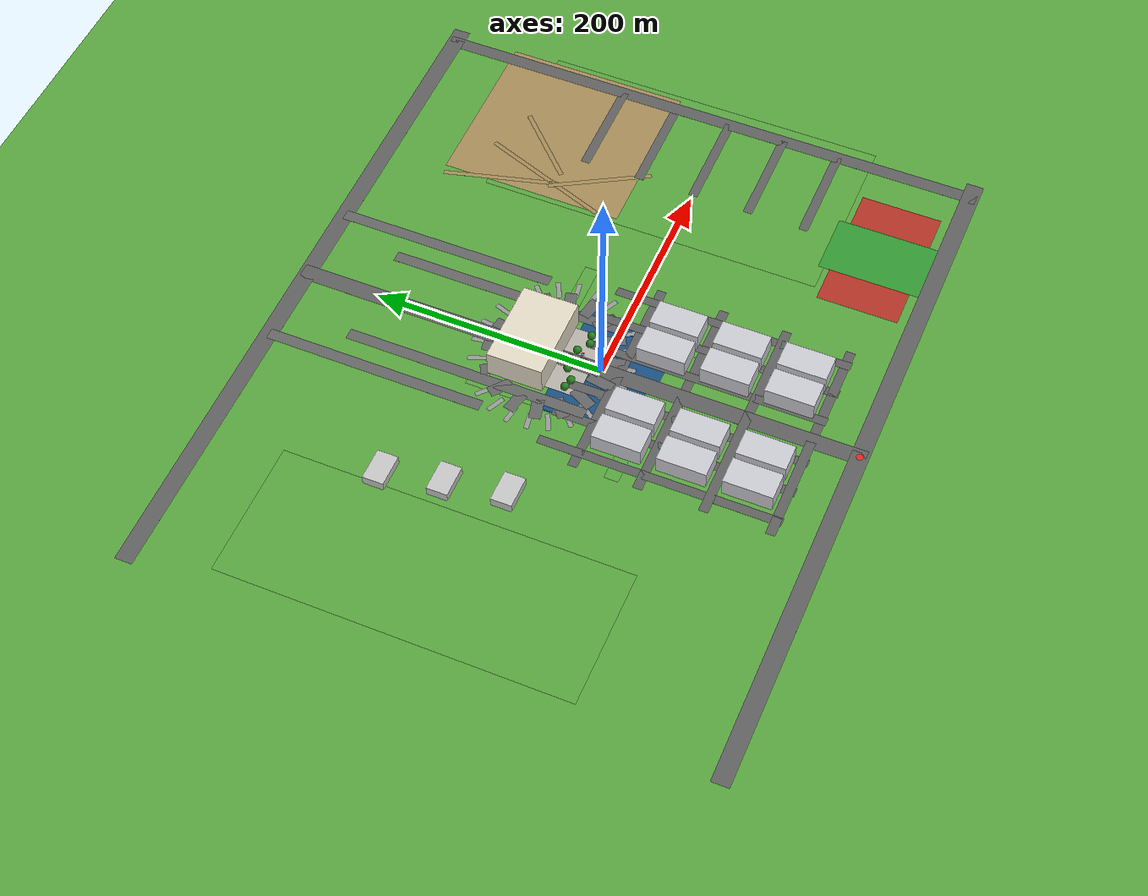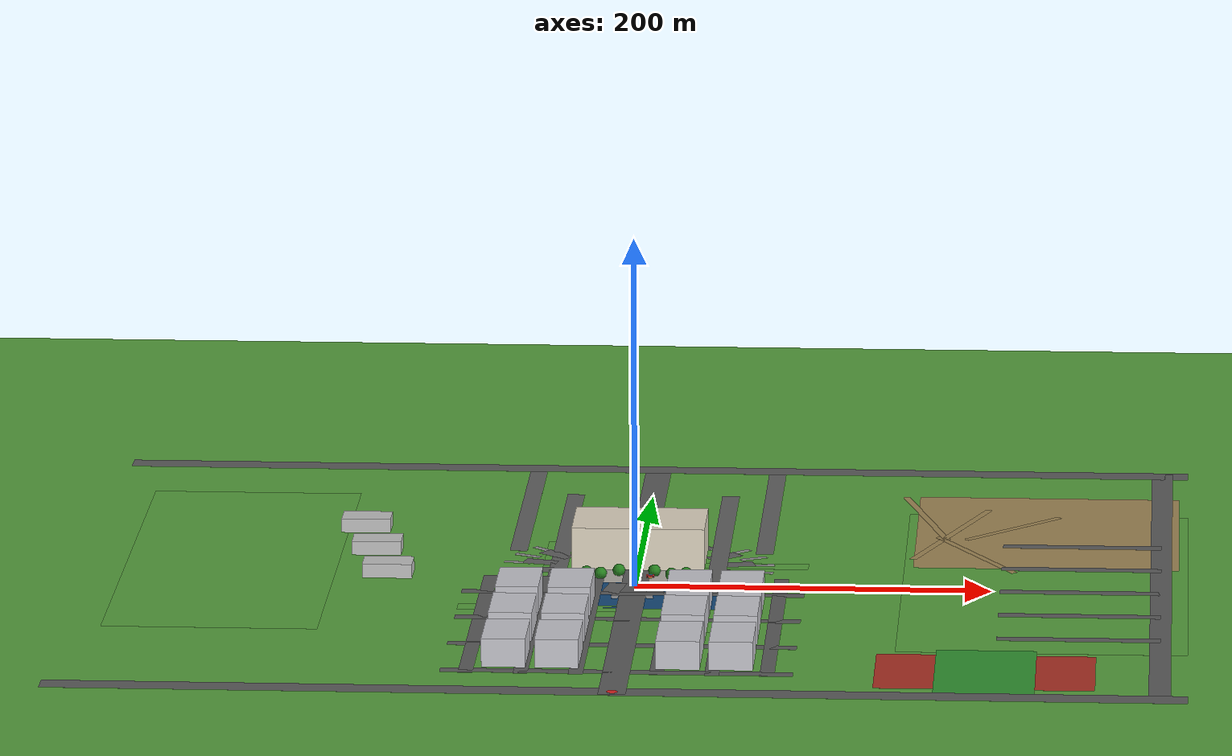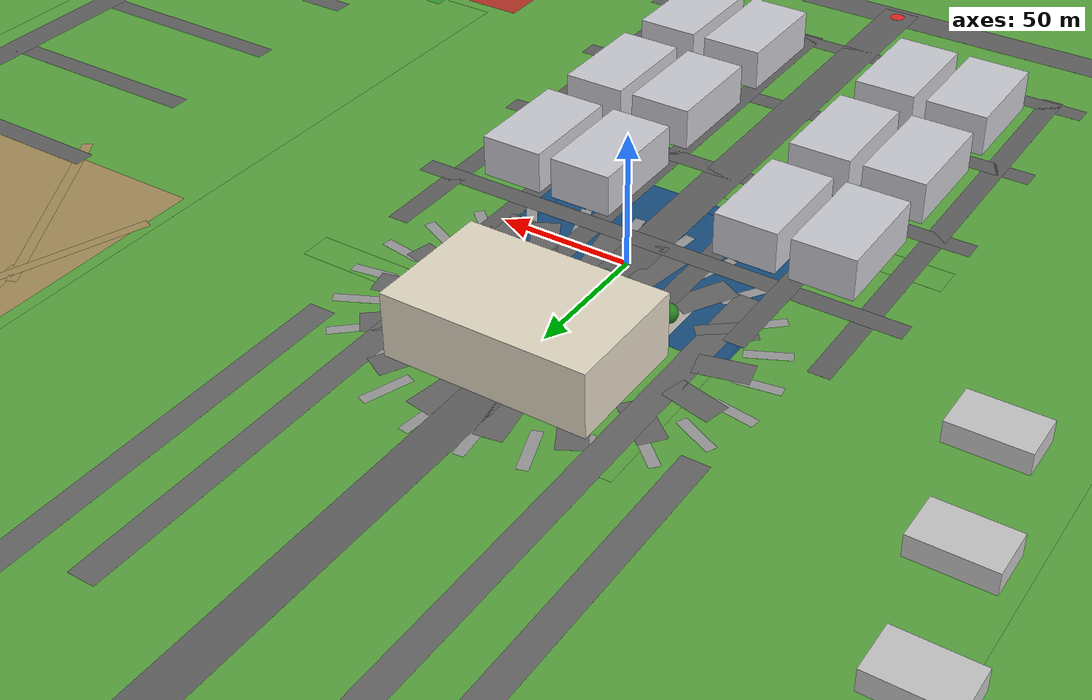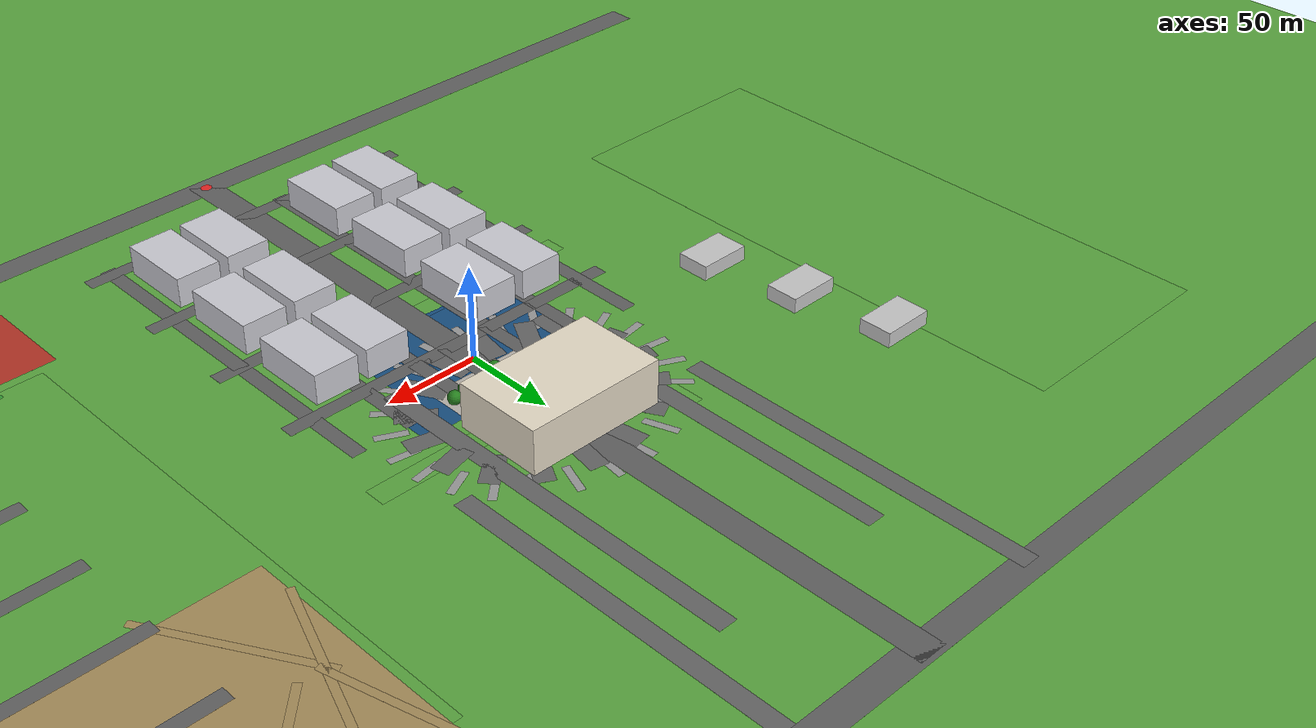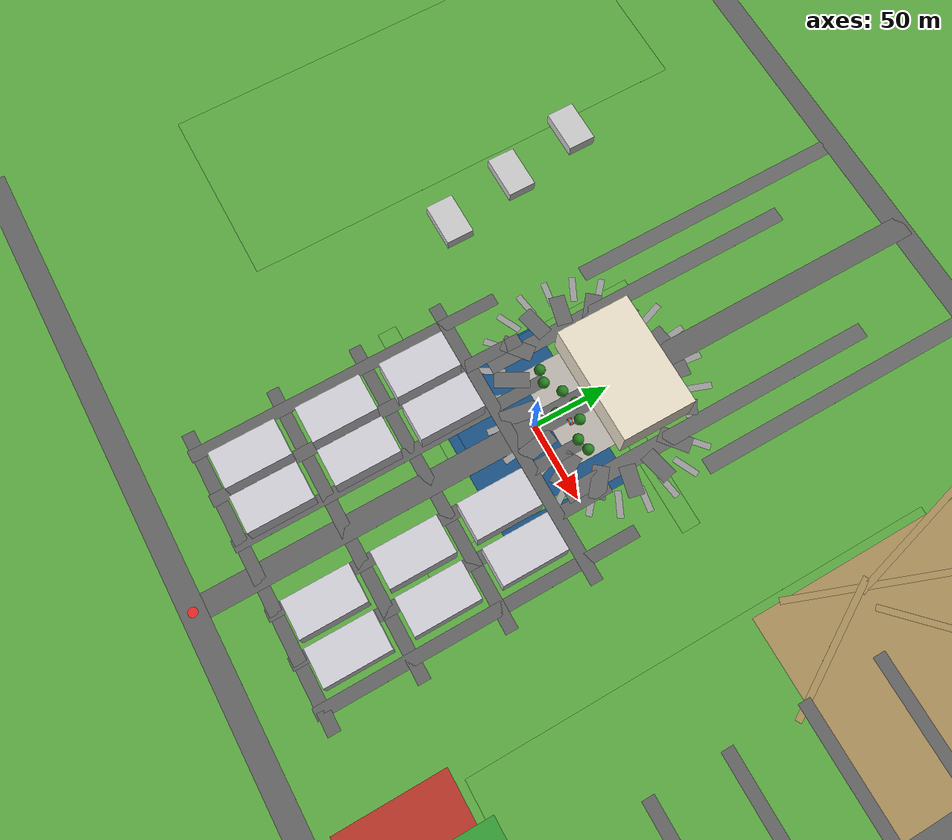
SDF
<sdf version="1.9">
 <world name="jiangyin">
  <physics type="ode">
   <max_step_size>0.004</max_step_size>
   <real_time_factor>1.0</real_time_factor>
   <real_time_update_rate>250</real_time_update_rate>
  </physics>
  <plugin name="gz::sim::systems::Physics" filename="gz-sim-physics-system"/>
  <plugin name="gz::sim::systems::UserCommands" filename="gz-sim-user-commands-system"/>
  <plugin name="gz::sim::systems::SceneBroadcaster" filename="gz-sim-scene-broadcaster-system"/>
  <plugin name="gz::sim::systems::Contact" filename="gz-sim-contact-system"/>
  <plugin name="gz::sim::systems::Imu" filename="gz-sim-imu-system"/>
  <plugin name="gz::sim::systems::AirPressure" filename="gz-sim-air-pressure-system"/>
  <plugin name="gz::sim::systems::ApplyLinkWrench" filename="gz-sim-apply-link-wrench-system"/>
  <plugin name="gz::sim::systems::NavSat" filename="gz-sim-navsat-system"/>
  <plugin name="gz::sim::systems::Sensors" filename="gz-sim-sensors-system">
   <render_engine>ogre2</render_engine>
  </plugin>
  <gravity>0 0 -9.8</gravity>
  <magnetic_field>6e-06 2.3e-05 -4.2e-05</magnetic_field>
  <atmosphere type="adiabatic"/>
  <scene>
   <grid>false</grid>
   <ambient>0.4 0.4 0.4 1</ambient>
   <background>0.6 0.75 0.9 1</background>
   <shadows>true</shadows>
  </scene>
  <light name="sunUTC" type="directional">
   <pose>0 0 500 0 -0 0</pose>
   <intensity>1</intensity>
   <direction>0.001 0.625 -0.78</direction>
   <diffuse>0.904 0.904 0.904 1</diffuse>
   <specular>0.271 0.271 0.271 1</specular>
   <attenuation><range>2000</range><linear>0</linear><constant>1</constant><quadratic>0</quadratic></attenuation>
   <spot><inner_angle>0</inner_angle><outer_angle>0</outer_angle><falloff>0</falloff></spot>
  </light>
  <spherical_coordinates>
   <surface_model>EARTH_WGS84</surface_model>
   <world_frame_orientation>ENU</world_frame_orientation>
   <latitude_deg>31.90325</latitude_deg>
   <longitude_deg>120.15825</longitude_deg>
   <elevation>3</elevation>
  </spherical_coordinates>
  <model name="ground_plane">
   <static>true</static>
   <link name="link">
    <collision name="collision">
     <geometry><plane><normal>0 0 1</normal><size>1 1</size></plane></geometry>
    </collision>
    <visual name="visual">
     <geometry><plane><normal>0 0 1</normal><size>660 510</size></plane></geometry>
     <material>
      <ambient>0.25 0.55 0.18 1</ambient>
      <diffuse>0.35 0.65 0.25 1</diffuse>
      <specular>0.1 0.1 0.1 1</specular>
     </material>
    </visual>
    <inertial>
     <mass>1</mass>
     <inertia><ixx>1</ixx><ixy>0</ixy><ixz>0</ixz><iyy>1</iyy><iyz>0</iyz><izz>1</izz></inertia>
    </inertial>
    <enable_wind>true</enable_wind>
   </link>
  </model>
  <model name="lake">
   <static>true</static>
   <link name="link">
    <visual name="visual">
     <geometry><box><size>110 80 0.005</size></box></geometry>
     <material>
      <ambient>0.0 0.15 0.4 0.85</ambient>
      <diffuse>0.1 0.3 0.6 0.85</diffuse>
      <specular>0.5 0.5 0.7 0.85</specular>
     </material>
    </visual>
   </link>
   <pose>0 -8 0.001 0 0 0</pose>
  </model>
  <model name="benchmark_marker">
   <static>true</static>
   <link name="link">
    <visual name="visual">
     <geometry><cylinder><radius>3</radius><length>0.05</length></cylinder></geometry>
     <material><ambient>0.8 0.1 0.1 1</ambient><diffuse>0.9 0.15 0.15 1</diffuse></material>
    </visual>
   </link>
   <pose>0 -220 0.008 0 0 0</pose>
  </model>
  <model name="road_axis">
   <static>true</static>
   <link name="link">
    <visual name="visual">
     <geometry><box><size>15 495 0.01</size></box></geometry>
     <material>
      <ambient>0.28 0.28 0.28 1</ambient>
      <diffuse>0.38 0.38 0.38 1</diffuse>
      <specular>0.1 0.1 0.1 1</specular>
     </material>
    </visual>
   </link>
   <pose>0 22.5 0.005 0 0 0</pose>
  </model>
  <model name="road_north_boundary">
   <static>true</static>
   <link name="link">
    <visual name="visual">
     <geometry><box><size>620 15 0.01</size></box></geometry>
     <material>
      <ambient>0.28 0.28 0.28 1</ambient>
      <diffuse>0.38 0.38 0.38 1</diffuse>
      <specular>0.1 0.1 0.1 1</specular>
     </material>
    </visual>
   </link>
   <pose>0 265 0.005 0 0 0</pose>
  </model>
  <model name="road_south_boundary">
   <static>true</static>
   <link name="link">
    <visual name="visual">
     <geometry><box><size>620 15 0.01</size></box></geometry>
     <material>
      <ambient>0.28 0.28 0.28 1</ambient>
      <diffuse>0.38 0.38 0.38 1</diffuse>
      <specular>0.1 0.1 0.1 1</specular>
     </material>
    </visual>
   </link>
   <pose>0 -220 0.005 0 0 0</pose>
  </model>
  <model name="road_east_longitudinal">
   <static>true</static>
   <link name="link">
    <visual name="visual">
     <geometry><box><size>12 495 0.01</size></box></geometry>
     <material>
      <ambient>0.28 0.28 0.28 1</ambient>
      <diffuse>0.38 0.38 0.38 1</diffuse>
      <specular>0.1 0.1 0.1 1</specular>
     </material>
    </visual>
   </link>
   <pose>295 22.5 0.005 0 0 0</pose>
  </model>
  <model name="road_ring_00">
   <static>true</static>
   <link name="link">
    <visual name="visual">
     <geometry><box><size>10 18.891932121753268 0.01</size></box></geometry>
     <material>
      <ambient>0.30 0.30 0.30 1</ambient>
      <diffuse>0.40 0.40 0.40 1</diffuse>
      <specular>0.1 0.1 0.1 1</specular>
     </material>
    </visual>
   </link>
   <pose>55.79250644282732 51.18440237676215 0.005 0 0 1.8066745296393754</pose>
  </model>
  <model name="road_ring_01">
   <static>true</static>
   <link name="link">
    <visual name="visual">
     <geometry><box><size>10 20.014319010346096 0.01</size></box></geometry>
     <material>
      <ambient>0.30 0.30 0.30 1</ambient>
      <diffuse>0.40 0.40 0.40 1</diffuse>
      <specular>0.1 0.1 0.1 1</specular>
     </material>
    </visual>
   </link>
   <pose>47.29860309723719 68.15496512523929 0.005 0 0 2.2500226231250684</pose>
  </model>
  <model name="road_ring_02">
   <static>true</static>
   <link name="link">
    <visual name="visual">
     <geometry><box><size>10 21.50182908508371 0.01</size></box></geometry>
     <material>
      <ambient>0.30 0.30 0.30 1</ambient>
      <diffuse>0.40 0.40 0.40 1</diffuse>
      <specular>0.1 0.1 0.1 1</specular>
     </material>
    </visual>
   </link>
   <pose>31.603916192997488 81.14367152874802 0.005 0 0 2.6364679181743162</pose>
  </model>
  <model name="road_ring_03">
   <static>true</static>
   <link name="link">
    <visual name="visual">
     <geometry><box><size>10 22.494366409372827 0.01</size></box></geometry>
     <material>
      <ambient>0.30 0.30 0.30 1</ambient>
      <diffuse>0.40 0.40 0.40 1</diffuse>
      <specular>0.1 0.1 0.1 1</specular>
     </material>
    </visual>
   </link>
   <pose>11.097819538587608 88.17310878027088 0.005 0 0 2.9784387787199136</pose>
  </model>
  <model name="road_ring_04">
   <static>true</static>
   <link name="link">
    <visual name="visual">
     <geometry><box><size>10 22.494366409372827 0.01</size></box></geometry>
     <material>
      <ambient>0.30 0.30 0.30 1</ambient>
      <diffuse>0.40 0.40 0.40 1</diffuse>
      <specular>0.1 0.1 0.1 1</specular>
     </material>
    </visual>
   </link>
   <pose>-11.0978195385876 88.17310878027088 0.005 0 0 -2.9784387787199136</pose>
  </model>
  <model name="road_ring_05">
   <static>true</static>
   <link name="link">
    <visual name="visual">
     <geometry><box><size>10 21.501829085083703 0.01</size></box></geometry>
     <material>
      <ambient>0.30 0.30 0.30 1</ambient>
      <diffuse>0.40 0.40 0.40 1</diffuse>
      <specular>0.1 0.1 0.1 1</specular>
     </material>
    </visual>
   </link>
   <pose>-31.60391619299748 81.14367152874803 0.005 0 0 -2.6364679181743167</pose>
  </model>
  <model name="road_ring_06">
   <static>true</static>
   <link name="link">
    <visual name="visual">
     <geometry><box><size>10 20.014319010346107 0.01</size></box></geometry>
     <material>
      <ambient>0.30 0.30 0.30 1</ambient>
      <diffuse>0.40 0.40 0.40 1</diffuse>
      <specular>0.1 0.1 0.1 1</specular>
     </material>
    </visual>
   </link>
   <pose>-47.29860309723719 68.1549651252393 0.005 0 0 -2.2500226231250684</pose>
  </model>
  <model name="road_ring_07">
   <static>true</static>
   <link name="link">
    <visual name="visual">
     <geometry><box><size>10 18.891932121753268 0.01</size></box></geometry>
     <material>
      <ambient>0.30 0.30 0.30 1</ambient>
      <diffuse>0.40 0.40 0.40 1</diffuse>
      <specular>0.1 0.1 0.1 1</specular>
     </material>
    </visual>
   </link>
   <pose>-55.79250644282732 51.184402376762165 0.005 0 0 -1.8066745296393754</pose>
  </model>
  <model name="road_ring_08">
   <static>true</static>
   <link name="link">
    <visual name="visual">
     <geometry><box><size>10 18.891932121753268 0.01</size></box></geometry>
     <material>
      <ambient>0.30 0.30 0.30 1</ambient>
      <diffuse>0.40 0.40 0.40 1</diffuse>
      <specular>0.1 0.1 0.1 1</specular>
     </material>
    </visual>
   </link>
   <pose>-55.79250644282732 32.81559762323785 0.005 0 0 -1.3349181239504182</pose>
  </model>
  <model name="road_ring_09">
   <static>true</static>
   <link name="link">
    <visual name="visual">
     <geometry><box><size>10 20.014319010346107 0.01</size></box></geometry>
     <material>
      <ambient>0.30 0.30 0.30 1</ambient>
      <diffuse>0.40 0.40 0.40 1</diffuse>
      <specular>0.1 0.1 0.1 1</specular>
     </material>
    </visual>
   </link>
   <pose>-47.298603097237205 15.845034874760708 0.005 0 0 -0.8915700304647254</pose>
  </model>
  <model name="road_ring_10">
   <static>true</static>
   <link name="link">
    <visual name="visual">
     <geometry><box><size>10 21.501829085083685 0.01</size></box></geometry>
     <material>
      <ambient>0.30 0.30 0.30 1</ambient>
      <diffuse>0.40 0.40 0.40 1</diffuse>
      <specular>0.1 0.1 0.1 1</specular>
     </material>
    </visual>
   </link>
   <pose>-31.603916192997502 2.8563284712519845 0.005 0 0 -0.505124735415477</pose>
  </model>
  <model name="road_ring_11">
   <static>true</static>
   <link name="link">
    <visual name="visual">
     <geometry><box><size>10 22.494366409372848 0.01</size></box></geometry>
     <material>
      <ambient>0.30 0.30 0.30 1</ambient>
      <diffuse>0.40 0.40 0.40 1</diffuse>
      <specular>0.1 0.1 0.1 1</specular>
     </material>
    </visual>
   </link>
   <pose>-11.097819538587625 -4.173108780270876 0.005 0 0 -0.1631538748698801</pose>
  </model>
  <model name="road_ring_12">
   <static>true</static>
   <link name="link">
    <visual name="visual">
     <geometry><box><size>10 22.494366409372848 0.01</size></box></geometry>
     <material>
      <ambient>0.30 0.30 0.30 1</ambient>
      <diffuse>0.40 0.40 0.40 1</diffuse>
      <specular>0.1 0.1 0.1 1</specular>
     </material>
    </visual>
   </link>
   <pose>11.097819538587604 -4.17310878027088 0.005 0 0 0.16315387486987976</pose>
  </model>
  <model name="road_ring_13">
   <static>true</static>
   <link name="link">
    <visual name="visual">
     <geometry><box><size>10 21.501829085083685 0.01</size></box></geometry>
     <material>
      <ambient>0.30 0.30 0.30 1</ambient>
      <diffuse>0.40 0.40 0.40 1</diffuse>
      <specular>0.1 0.1 0.1 1</specular>
     </material>
    </visual>
   </link>
   <pose>31.60391619299748 2.8563284712519774 0.005 0 0 0.505124735415477</pose>
  </model>
  <model name="road_ring_14">
   <static>true</static>
   <link name="link">
    <visual name="visual">
     <geometry><box><size>10 20.014319010346092 0.01</size></box></geometry>
     <material>
      <ambient>0.30 0.30 0.30 1</ambient>
      <diffuse>0.40 0.40 0.40 1</diffuse>
      <specular>0.1 0.1 0.1 1</specular>
     </material>
    </visual>
   </link>
   <pose>47.298603097237184 15.845034874760689 0.005 0 0 0.8915700304647243</pose>
  </model>
  <model name="road_ring_15">
   <static>true</static>
   <link name="link">
    <visual name="visual">
     <geometry><box><size>10 18.891932121753282 0.01</size></box></geometry>
     <material>
      <ambient>0.30 0.30 0.30 1</ambient>
      <diffuse>0.40 0.40 0.40 1</diffuse>
      <specular>0.1 0.1 0.1 1</specular>
     </material>
    </visual>
   </link>
   <pose>55.79250644282731 32.81559762323782 0.005 0 0 1.3349181239504175</pose>
  </model>
  <model name="road_ring_nw_branch">
   <static>true</static>
   <link name="link">
    <visual name="visual">
     <geometry><box><size>10 190 0.01</size></box></geometry>
     <material>
      <ambient>0.30 0.30 0.30 1</ambient>
      <diffuse>0.40 0.40 0.40 1</diffuse>
      <specular>0.1 0.1 0.1 1</specular>
     </material>
    </visual>
   </link>
   <pose>-70 170 0.005 0 0 0</pose>
  </model>
  <model name="road_ring_nw_branch2">
   <static>true</static>
   <link name="link">
    <visual name="visual">
     <geometry><box><size>10 210 0.01</size></box></geometry>
     <material>
      <ambient>0.30 0.30 0.30 1</ambient>
      <diffuse>0.40 0.40 0.40 1</diffuse>
      <specular>0.1 0.1 0.1 1</specular>
     </material>
    </visual>
   </link>
   <pose>-45 100 0.005 0 0 0</pose>
  </model>
  <model name="road_ring_ne_branch">
   <static>true</static>
   <link name="link">
    <visual name="visual">
     <geometry><box><size>10 190 0.01</size></box></geometry>
     <material>
      <ambient>0.30 0.30 0.30 1</ambient>
      <diffuse>0.40 0.40 0.40 1</diffuse>
      <specular>0.1 0.1 0.1 1</specular>
     </material>
    </visual>
   </link>
   <pose>70 170 0.005 0 0 0</pose>
  </model>
  <model name="road_ring_ne_branch2">
   <static>true</static>
   <link name="link">
    <visual name="visual">
     <geometry><box><size>10 210 0.01</size></box></geometry>
     <material>
      <ambient>0.30 0.30 0.30 1</ambient>
      <diffuse>0.40 0.40 0.40 1</diffuse>
      <specular>0.1 0.1 0.1 1</specular>
     </material>
    </visual>
   </link>
   <pose>45 100 0.005 0 0 0</pose>
  </model>
  <model name="road_grid_ew1">
   <static>true</static>
   <link name="link">
    <visual name="visual">
     <geometry><box><size>192 8 0.01</size></box></geometry>
     <material>
      <ambient>0.28 0.28 0.28 1</ambient>
      <diffuse>0.38 0.38 0.38 1</diffuse>
      <specular>0.1 0.1 0.1 1</specular>
     </material>
    </visual>
   </link>
   <pose>0 -15 0.005 0 0 0</pose>
  </model>
  <model name="road_grid_ew2">
   <static>true</static>
   <link name="link">
    <visual name="visual">
     <geometry><box><size>192 8 0.01</size></box></geometry>
     <material>
      <ambient>0.28 0.28 0.28 1</ambient>
      <diffuse>0.38 0.38 0.38 1</diffuse>
      <specular>0.1 0.1 0.1 1</specular>
     </material>
    </visual>
   </link>
   <pose>0 -70 0.005 0 0 0</pose>
  </model>
  <model name="road_grid_ew3">
   <static>true</static>
   <link name="link">
    <visual name="visual">
     <geometry><box><size>192 8 0.01</size></box></geometry>
     <material>
      <ambient>0.28 0.28 0.28 1</ambient>
      <diffuse>0.38 0.38 0.38 1</diffuse>
      <specular>0.1 0.1 0.1 1</specular>
     </material>
    </visual>
   </link>
   <pose>0 -125 0.005 0 0 0</pose>
  </model>
  <model name="road_grid_ew4">
   <static>true</static>
   <link name="link">
    <visual name="visual">
     <geometry><box><size>192 8 0.01</size></box></geometry>
     <material>
      <ambient>0.28 0.28 0.28 1</ambient>
      <diffuse>0.38 0.38 0.38 1</diffuse>
      <specular>0.1 0.1 0.1 1</specular>
     </material>
    </visual>
   </link>
   <pose>0 -180 0.005 0 0 0</pose>
  </model>
  <model name="road_grid_ns1">
   <static>true</static>
   <link name="link">
    <visual name="visual">
     <geometry><box><size>8 205 0.01</size></box></geometry>
     <material>
      <ambient>0.28 0.28 0.28 1</ambient>
      <diffuse>0.38 0.38 0.38 1</diffuse>
      <specular>0.1 0.1 0.1 1</specular>
     </material>
    </visual>
   </link>
   <pose>-82 -82.5 0.005 0 0 0</pose>
  </model>
  <model name="road_grid_ns2">
   <static>true</static>
   <link name="link">
    <visual name="visual">
     <geometry><box><size>8 205 0.01</size></box></geometry>
     <material>
      <ambient>0.28 0.28 0.28 1</ambient>
      <diffuse>0.38 0.38 0.38 1</diffuse>
      <specular>0.1 0.1 0.1 1</specular>
     </material>
    </visual>
   </link>
   <pose>-52 -82.5 0.005 0 0 0</pose>
  </model>
  <model name="road_grid_ns3">
   <static>true</static>
   <link name="link">
    <visual name="visual">
     <geometry><box><size>8 205 0.01</size></box></geometry>
     <material>
      <ambient>0.28 0.28 0.28 1</ambient>
      <diffuse>0.38 0.38 0.38 1</diffuse>
      <specular>0.1 0.1 0.1 1</specular>
     </material>
    </visual>
   </link>
   <pose>-22 -82.5 0.005 0 0 0</pose>
  </model>
  <model name="road_grid_ns4">
   <static>true</static>
   <link name="link">
    <visual name="visual">
     <geometry><box><size>8 205 0.01</size></box></geometry>
     <material>
      <ambient>0.28 0.28 0.28 1</ambient>
      <diffuse>0.38 0.38 0.38 1</diffuse>
      <specular>0.1 0.1 0.1 1</specular>
     </material>
    </visual>
   </link>
   <pose>22 -82.5 0.005 0 0 0</pose>
  </model>
  <model name="road_grid_ns5">
   <static>true</static>
   <link name="link">
    <visual name="visual">
     <geometry><box><size>8 205 0.01</size></box></geometry>
     <material>
      <ambient>0.28 0.28 0.28 1</ambient>
      <diffuse>0.38 0.38 0.38 1</diffuse>
      <specular>0.1 0.1 0.1 1</specular>
     </material>
    </visual>
   </link>
   <pose>52 -82.5 0.005 0 0 0</pose>
  </model>
  <model name="road_grid_ns6">
   <static>true</static>
   <link name="link">
    <visual name="visual">
     <geometry><box><size>8 205 0.01</size></box></geometry>
     <material>
      <ambient>0.28 0.28 0.28 1</ambient>
      <diffuse>0.38 0.38 0.38 1</diffuse>
      <specular>0.1 0.1 0.1 1</specular>
     </material>
    </visual>
   </link>
   <pose>82 -82.5 0.005 0 0 0</pose>
  </model>
  <model name="road_east_branch_005">
   <static>true</static>
   <link name="link">
    <visual name="visual">
     <geometry><box><size>90 8 0.01</size></box></geometry>
     <material>
      <ambient>0.28 0.28 0.28 1</ambient>
      <diffuse>0.38 0.38 0.38 1</diffuse>
      <specular>0.1 0.1 0.1 1</specular>
     </material>
    </visual>
   </link>
   <pose>250 -100 0.005 0 0 0</pose>
  </model>
  <model name="road_east_branch_055">
   <static>true</static>
   <link name="link">
    <visual name="visual">
     <geometry><box><size>90 8 0.01</size></box></geometry>
     <material>
      <ambient>0.28 0.28 0.28 1</ambient>
      <diffuse>0.38 0.38 0.38 1</diffuse>
      <specular>0.1 0.1 0.1 1</specular>
     </material>
    </visual>
   </link>
   <pose>250 -50 0.005 0 0 0</pose>
  </model>
  <model name="road_east_branch_105">
   <static>true</static>
   <link name="link">
    <visual name="visual">
     <geometry><box><size>90 8 0.01</size></box></geometry>
     <material>
      <ambient>0.28 0.28 0.28 1</ambient>
      <diffuse>0.38 0.38 0.38 1</diffuse>
      <specular>0.1 0.1 0.1 1</specular>
     </material>
    </visual>
   </link>
   <pose>250 0 0.005 0 0 0</pose>
  </model>
  <model name="road_east_branch_155">
   <static>true</static>
   <link name="link">
    <visual name="visual">
     <geometry><box><size>90 8 0.01</size></box></geometry>
     <material>
      <ambient>0.28 0.28 0.28 1</ambient>
      <diffuse>0.38 0.38 0.38 1</diffuse>
      <specular>0.1 0.1 0.1 1</specular>
     </material>
    </visual>
   </link>
   <pose>250 50 0.005 0 0 0</pose>
  </model>
  <model name="road_east_branch_205">
   <static>true</static>
   <link name="link">
    <visual name="visual">
     <geometry><box><size>90 8 0.01</size></box></geometry>
     <material>
      <ambient>0.28 0.28 0.28 1</ambient>
      <diffuse>0.38 0.38 0.38 1</diffuse>
      <specular>0.1 0.1 0.1 1</specular>
     </material>
    </visual>
   </link>
   <pose>250 100 0.005 0 0 0</pose>
  </model>
  <model name="path_lakeside_00">
   <static>true</static>
   <link name="link">
    <visual name="visual">
     <geometry><box><size>4 15.711251217742525 0.01</size></box></geometry>
     <material>
      <ambient>0.50 0.50 0.50 1</ambient>
      <diffuse>0.60 0.60 0.60 1</diffuse>
      <specular>0.1 0.1 0.1 1</specular>
     </material>
    </visual>
   </link>
   <pose>68.8074039201174 49.764571353075624 0.004 0 0 1.7231998892998297</pose>
  </model>
  <model name="path_lakeside_01">
   <static>true</static>
   <link name="link">
    <visual name="visual">
     <geometry><box><size>4 16.07196856207393 0.01</size></box></geometry>
     <material>
      <ambient>0.50 0.50 0.50 1</ambient>
      <diffuse>0.60 0.60 0.60 1</diffuse>
      <specular>0.1 0.1 0.1 1</specular>
     </material>
    </visual>
   </link>
   <pose>64.11829305257274 64.76457135307562 0.004 0 0 2.020953684364474</pose>
  </model>
  <model name="path_lakeside_02">
   <static>true</static>
   <link name="link">
    <visual name="visual">
     <geometry><box><size>4 16.678300810023863 0.01</size></box></geometry>
     <material>
      <ambient>0.50 0.50 0.50 1</ambient>
      <diffuse>0.60 0.60 0.60 1</diffuse>
      <specular>0.1 0.1 0.1 1</specular>
     </material>
    </visual>
   </link>
   <pose>55.05962647398452 78.21320343559643 0.004 0 0 2.300961383088927</pose>
  </model>
  <model name="path_lakeside_03">
   <static>true</static>
   <link name="link">
    <visual name="visual">
     <geometry><box><size>4 17.352095987983596 0.01</size></box></geometry>
     <material>
      <ambient>0.50 0.50 0.50 1</ambient>
      <diffuse>0.60 0.60 0.60 1</diffuse>
      <specular>0.1 0.1 0.1 1</specular>
     </material>
    </visual>
   </link>
   <pose>42.248737341529164 89.19396554912959 0.004 0 0 2.5598172831906942</pose>
  </model>
  <model name="path_lakeside_04">
   <static>true</static>
   <link name="link">
    <visual name="visual">
     <geometry><box><size>4 17.915155026556327 0.01</size></box></geometry>
     <material>
      <ambient>0.50 0.50 0.50 1</ambient>
      <diffuse>0.60 0.60 0.60 1</diffuse>
      <specular>0.1 0.1 0.1 1</specular>
     </material>
    </visual>
   </link>
   <pose>26.55866657858823 96.95853690220521 0.004 0 0 2.8004347570558954</pose>
  </model>
  <model name="path_lakeside_05">
   <static>true</static>
   <link name="link">
    <visual name="visual">
     <geometry><box><size>4 18.23232125262231 0.01</size></box></geometry>
     <material>
      <ambient>0.50 0.50 0.50 1</ambient>
      <diffuse>0.60 0.60 0.60 1</diffuse>
      <specular>0.1 0.1 0.1 1</specular>
     </material>
    </visual>
   </link>
   <pose>9.058666578588229 100.97777478867205 0.004 0 0 3.0292230181107205</pose>
  </model>
  <model name="path_lakeside_06">
   <static>true</static>
   <link name="link">
    <visual name="visual">
     <geometry><box><size>4 18.232321252622306 0.01</size></box></geometry>
     <material>
      <ambient>0.50 0.50 0.50 1</ambient>
      <diffuse>0.60 0.60 0.60 1</diffuse>
      <specular>0.1 0.1 0.1 1</specular>
     </material>
    </visual>
   </link>
   <pose>-9.05866657858822 100.97777478867205 0.004 0 0 -3.0292230181107205</pose>
  </model>
  <model name="path_lakeside_07">
   <static>true</static>
   <link name="link">
    <visual name="visual">
     <geometry><box><size>4 17.91515502655632 0.01</size></box></geometry>
     <material>
      <ambient>0.50 0.50 0.50 1</ambient>
      <diffuse>0.60 0.60 0.60 1</diffuse>
      <specular>0.1 0.1 0.1 1</specular>
     </material>
    </visual>
   </link>
   <pose>-26.558666578588216 96.95853690220521 0.004 0 0 -2.800434757055895</pose>
  </model>
  <model name="path_lakeside_08">
   <static>true</static>
   <link name="link">
    <visual name="visual">
     <geometry><box><size>4 17.352095987983606 0.01</size></box></geometry>
     <material>
      <ambient>0.50 0.50 0.50 1</ambient>
      <diffuse>0.60 0.60 0.60 1</diffuse>
      <specular>0.1 0.1 0.1 1</specular>
     </material>
    </visual>
   </link>
   <pose>-42.24873734152915 89.19396554912959 0.004 0 0 -2.5598172831906947</pose>
  </model>
  <model name="path_lakeside_09">
   <static>true</static>
   <link name="link">
    <visual name="visual">
     <geometry><box><size>4 16.678300810023867 0.01</size></box></geometry>
     <material>
      <ambient>0.50 0.50 0.50 1</ambient>
      <diffuse>0.60 0.60 0.60 1</diffuse>
      <specular>0.1 0.1 0.1 1</specular>
     </material>
    </visual>
   </link>
   <pose>-55.059626473984515 78.21320343559643 0.004 0 0 -2.3009613830889273</pose>
  </model>
  <model name="path_lakeside_10">
   <static>true</static>
   <link name="link">
    <visual name="visual">
     <geometry><box><size>4 16.071968562073916 0.01</size></box></geometry>
     <material>
      <ambient>0.50 0.50 0.50 1</ambient>
      <diffuse>0.60 0.60 0.60 1</diffuse>
      <specular>0.1 0.1 0.1 1</specular>
     </material>
    </visual>
   </link>
   <pose>-64.11829305257274 64.76457135307564 0.004 0 0 -2.020953684364474</pose>
  </model>
  <model name="path_lakeside_11">
   <static>true</static>
   <link name="link">
    <visual name="visual">
     <geometry><box><size>4 15.711251217742532 0.01</size></box></geometry>
     <material>
      <ambient>0.50 0.50 0.50 1</ambient>
      <diffuse>0.60 0.60 0.60 1</diffuse>
      <specular>0.1 0.1 0.1 1</specular>
     </material>
    </visual>
   </link>
   <pose>-68.8074039201174 49.76457135307564 0.004 0 0 -1.7231998892998297</pose>
  </model>
  <model name="path_lakeside_12">
   <static>true</static>
   <link name="link">
    <visual name="visual">
     <geometry><box><size>4 15.711251217742532 0.01</size></box></geometry>
     <material>
      <ambient>0.50 0.50 0.50 1</ambient>
      <diffuse>0.60 0.60 0.60 1</diffuse>
      <specular>0.1 0.1 0.1 1</specular>
     </material>
    </visual>
   </link>
   <pose>-68.8074039201174 34.235428646924376 0.004 0 0 -1.4183927642899636</pose>
  </model>
  <model name="path_lakeside_13">
   <static>true</static>
   <link name="link">
    <visual name="visual">
     <geometry><box><size>4 16.07196856207391 0.01</size></box></geometry>
     <material>
      <ambient>0.50 0.50 0.50 1</ambient>
      <diffuse>0.60 0.60 0.60 1</diffuse>
      <specular>0.1 0.1 0.1 1</specular>
     </material>
    </visual>
   </link>
   <pose>-64.11829305257274 19.235428646924383 0.004 0 0 -1.1206389692253194</pose>
  </model>
  <model name="path_lakeside_14">
   <static>true</static>
   <link name="link">
    <visual name="visual">
     <geometry><box><size>4 16.678300810023842 0.01</size></box></geometry>
     <material>
      <ambient>0.50 0.50 0.50 1</ambient>
      <diffuse>0.60 0.60 0.60 1</diffuse>
      <specular>0.1 0.1 0.1 1</specular>
     </material>
    </visual>
   </link>
   <pose>-55.05962647398454 5.786796564403597 0.004 0 0 -0.8406312705008667</pose>
  </model>
  <model name="path_lakeside_15">
   <static>true</static>
   <link name="link">
    <visual name="visual">
     <geometry><box><size>4 17.35209598798361 0.01</size></box></geometry>
     <material>
      <ambient>0.50 0.50 0.50 1</ambient>
      <diffuse>0.60 0.60 0.60 1</diffuse>
      <specular>0.1 0.1 0.1 1</specular>
     </material>
    </visual>
   </link>
   <pose>-42.24873734152919 -5.193965549129565 0.004 0 0 -0.5817753703990993</pose>
  </model>
  <model name="path_lakeside_16">
   <static>true</static>
   <link name="link">
    <visual name="visual">
     <geometry><box><size>4 17.915155026556363 0.01</size></box></geometry>
     <material>
      <ambient>0.50 0.50 0.50 1</ambient>
      <diffuse>0.60 0.60 0.60 1</diffuse>
      <specular>0.1 0.1 0.1 1</specular>
     </material>
    </visual>
   </link>
   <pose>-26.558666578588237 -12.958536902205203 0.004 0 0 -0.3411578965338981</pose>
  </model>
  <model name="path_lakeside_17">
   <static>true</static>
   <link name="link">
    <visual name="visual">
     <geometry><box><size>4 18.232321252622288 0.01</size></box></geometry>
     <material>
      <ambient>0.50 0.50 0.50 1</ambient>
      <diffuse>0.60 0.60 0.60 1</diffuse>
      <specular>0.1 0.1 0.1 1</specular>
     </material>
    </visual>
   </link>
   <pose>-9.058666578588229 -16.97777478867205 0.004 0 0 -0.11236963547907308</pose>
  </model>
  <model name="path_lakeside_18">
   <static>true</static>
   <link name="link">
    <visual name="visual">
     <geometry><box><size>4 18.23232125262229 0.01</size></box></geometry>
     <material>
      <ambient>0.50 0.50 0.50 1</ambient>
      <diffuse>0.60 0.60 0.60 1</diffuse>
      <specular>0.1 0.1 0.1 1</specular>
     </material>
    </visual>
   </link>
   <pose>9.058666578588204 -16.977774788672054 0.004 0 0 0.11236963547907265</pose>
  </model>
  <model name="path_lakeside_19">
   <static>true</static>
   <link name="link">
    <visual name="visual">
     <geometry><box><size>4 17.915155026556363 0.01</size></box></geometry>
     <material>
      <ambient>0.50 0.50 0.50 1</ambient>
      <diffuse>0.60 0.60 0.60 1</diffuse>
      <specular>0.1 0.1 0.1 1</specular>
     </material>
    </visual>
   </link>
   <pose>26.558666578588216 -12.95853690220521 0.004 0 0 0.3411578965338981</pose>
  </model>
  <model name="path_lakeside_20">
   <static>true</static>
   <link name="link">
    <visual name="visual">
     <geometry><box><size>4 17.352095987983574 0.01</size></box></geometry>
     <material>
      <ambient>0.50 0.50 0.50 1</ambient>
      <diffuse>0.60 0.60 0.60 1</diffuse>
      <specular>0.1 0.1 0.1 1</specular>
     </material>
    </visual>
   </link>
   <pose>42.248737341529164 -5.193965549129587 0.004 0 0 0.5817753703990985</pose>
  </model>
  <model name="path_lakeside_21">
   <static>true</static>
   <link name="link">
    <visual name="visual">
     <geometry><box><size>4 16.678300810023842 0.01</size></box></geometry>
     <material>
      <ambient>0.50 0.50 0.50 1</ambient>
      <diffuse>0.60 0.60 0.60 1</diffuse>
      <specular>0.1 0.1 0.1 1</specular>
     </material>
    </visual>
   </link>
   <pose>55.0596264739845 5.786796564403556 0.004 0 0 0.8406312705008656</pose>
  </model>
  <model name="path_lakeside_22">
   <static>true</static>
   <link name="link">
    <visual name="visual">
     <geometry><box><size>4 16.071968562073916 0.01</size></box></geometry>
     <material>
      <ambient>0.50 0.50 0.50 1</ambient>
      <diffuse>0.60 0.60 0.60 1</diffuse>
      <specular>0.1 0.1 0.1 1</specular>
     </material>
    </visual>
   </link>
   <pose>64.11829305257272 19.23542864692434 0.004 0 0 1.1206389692253185</pose>
  </model>
  <model name="path_lakeside_23">
   <static>true</static>
   <link name="link">
    <visual name="visual">
     <geometry><box><size>4 15.711251217742559 0.01</size></box></geometry>
     <material>
      <ambient>0.50 0.50 0.50 1</ambient>
      <diffuse>0.60 0.60 0.60 1</diffuse>
      <specular>0.1 0.1 0.1 1</specular>
     </material>
    </visual>
   </link>
   <pose>68.80740392011738 34.23542864692435 0.004 0 0 1.418392764289963</pose>
  </model>
  <model name="dirt_path_01">
   <static>true</static>
   <link name="link">
    <visual name="visual">
     <geometry><box><size>4 100 0.01</size></box></geometry>
     <material>
      <ambient>0.55 0.45 0.30 1</ambient>
      <diffuse>0.65 0.55 0.35 1</diffuse>
      <specular>0.1 0.1 0.1 1</specular>
     </material>
    </visual>
   </link>
   <pose>160 160 0.003 0 0 0.2617993877991494</pose>
  </model>
  <model name="dirt_path_02">
   <static>true</static>
   <link name="link">
    <visual name="visual">
     <geometry><box><size>4 120 0.01</size></box></geometry>
     <material>
      <ambient>0.55 0.45 0.30 1</ambient>
      <diffuse>0.65 0.55 0.35 1</diffuse>
      <specular>0.1 0.1 0.1 1</specular>
     </material>
    </visual>
   </link>
   <pose>175 125 0.003 0 0 -0.3490658503988659</pose>
  </model>
  <model name="dirt_path_03">
   <static>true</static>
   <link name="link">
    <visual name="visual">
     <geometry><box><size>4 90 0.01</size></box></geometry>
     <material>
      <ambient>0.55 0.45 0.30 1</ambient>
      <diffuse>0.65 0.55 0.35 1</diffuse>
      <specular>0.1 0.1 0.1 1</specular>
     </material>
    </visual>
   </link>
   <pose>190 80 0.003 0 0 0.5235987755982988</pose>
  </model>
  <model name="dirt_path_04">
   <static>true</static>
   <link name="link">
    <visual name="visual">
     <geometry><box><size>4 75 0.01</size></box></geometry>
     <material>
      <ambient>0.55 0.45 0.30 1</ambient>
      <diffuse>0.65 0.55 0.35 1</diffuse>
      <specular>0.1 0.1 0.1 1</specular>
     </material>
    </visual>
   </link>
   <pose>210 140 0.003 0 0 -0.7853981633974483</pose>
  </model>
  <model name="peninsula">
   <static>true</static>
   <link name="link">
    <visual name="visual">
     <geometry><box><size>55 18 0.003</size></box></geometry>
     <material>
      <ambient>0.25 0.55 0.18 1</ambient>
      <diffuse>0.35 0.65 0.25 1</diffuse>
      <specular>0.1 0.1 0.1 1</specular>
     </material>
    </visual>
   </link>
   <pose>0 30 0.003 0 0 0</pose>
  </model>
  <model name="central_plaza">
   <static>true</static>
   <link name="link">
    <visual name="visual">
     <geometry><box><size>65 28 0.005</size></box></geometry>
     <material>
      <ambient>0.65 0.63 0.60 1</ambient>
      <diffuse>0.72 0.70 0.67 1</diffuse>
      <specular>0.1 0.1 0.1 1</specular>
     </material>
    </visual>
   </link>
   <pose>0 22 0.003 0 0 0</pose>
  </model>
  <model name="library">
   <static>true</static>
   <link name="link">
    <collision name="collision"><geometry><box><size>75 48 24</size></box></geometry></collision>
    <visual name="visual">
     <geometry><box><size>75 48 24</size></box></geometry>
     <material>
      <ambient>0.85 0.80 0.72 1</ambient>
      <diffuse>0.90 0.86 0.78 1</diffuse>
      <specular>0.1 0.1 0.1 1</specular>
     </material>
    </visual>
   </link>
   <pose>0 60 12.0 0 0 0</pose>
  </model>
  <model name="teaching_r1_w1">
   <static>true</static>
   <link name="link">
    <collision name="collision"><geometry><box><size>24 42 16</size></box></geometry></collision>
    <visual name="visual">
     <geometry><box><size>24 42 16</size></box></geometry>
     <material>
      <ambient>0.75 0.75 0.78 1</ambient>
      <diffuse>0.80 0.80 0.83 1</diffuse>
      <specular>0.1 0.1 0.1 1</specular>
     </material>
    </visual>
   </link>
   <pose>-62 -42.5 8.0 0 0 0</pose>
  </model>
  <model name="teaching_r1_w2">
   <static>true</static>
   <link name="link">
    <collision name="collision"><geometry><box><size>24 42 16</size></box></geometry></collision>
    <visual name="visual">
     <geometry><box><size>24 42 16</size></box></geometry>
     <material>
      <ambient>0.75 0.75 0.78 1</ambient>
      <diffuse>0.80 0.80 0.83 1</diffuse>
      <specular>0.1 0.1 0.1 1</specular>
     </material>
    </visual>
   </link>
   <pose>-33 -42.5 8.0 0 0 0</pose>
  </model>
  <model name="teaching_r1_e3">
   <static>true</static>
   <link name="link">
    <collision name="collision"><geometry><box><size>24 42 16</size></box></geometry></collision>
    <visual name="visual">
     <geometry><box><size>24 42 16</size></box></geometry>
     <material>
      <ambient>0.75 0.75 0.78 1</ambient>
      <diffuse>0.80 0.80 0.83 1</diffuse>
      <specular>0.1 0.1 0.1 1</specular>
     </material>
    </visual>
   </link>
   <pose>33 -42.5 8.0 0 0 0</pose>
  </model>
  <model name="teaching_r1_e4">
   <static>true</static>
   <link name="link">
    <collision name="collision"><geometry><box><size>24 42 16</size></box></geometry></collision>
    <visual name="visual">
     <geometry><box><size>24 42 16</size></box></geometry>
     <material>
      <ambient>0.75 0.75 0.78 1</ambient>
      <diffuse>0.80 0.80 0.83 1</diffuse>
      <specular>0.1 0.1 0.1 1</specular>
     </material>
    </visual>
   </link>
   <pose>62 -42.5 8.0 0 0 0</pose>
  </model>
  <model name="teaching_r2_w1">
   <static>true</static>
   <link name="link">
    <collision name="collision"><geometry><box><size>24 42 16</size></box></geometry></collision>
    <visual name="visual">
     <geometry><box><size>24 42 16</size></box></geometry>
     <material>
      <ambient>0.75 0.75 0.78 1</ambient>
      <diffuse>0.80 0.80 0.83 1</diffuse>
      <specular>0.1 0.1 0.1 1</specular>
     </material>
    </visual>
   </link>
   <pose>-62 -97.5 8.0 0 0 0</pose>
  </model>
  <model name="teaching_r2_w2">
   <static>true</static>
   <link name="link">
    <collision name="collision"><geometry><box><size>24 42 16</size></box></geometry></collision>
    <visual name="visual">
     <geometry><box><size>24 42 16</size></box></geometry>
     <material>
      <ambient>0.75 0.75 0.78 1</ambient>
      <diffuse>0.80 0.80 0.83 1</diffuse>
      <specular>0.1 0.1 0.1 1</specular>
     </material>
    </visual>
   </link>
   <pose>-33 -97.5 8.0 0 0 0</pose>
  </model>
  <model name="teaching_r2_e3">
   <static>true</static>
   <link name="link">
    <collision name="collision"><geometry><box><size>24 42 16</size></box></geometry></collision>
    <visual name="visual">
     <geometry><box><size>24 42 16</size></box></geometry>
     <material>
      <ambient>0.75 0.75 0.78 1</ambient>
      <diffuse>0.80 0.80 0.83 1</diffuse>
      <specular>0.1 0.1 0.1 1</specular>
     </material>
    </visual>
   </link>
   <pose>33 -97.5 8.0 0 0 0</pose>
  </model>
  <model name="teaching_r2_e4">
   <static>true</static>
   <link name="link">
    <collision name="collision"><geometry><box><size>24 42 16</size></box></geometry></collision>
    <visual name="visual">
     <geometry><box><size>24 42 16</size></box></geometry>
     <material>
      <ambient>0.75 0.75 0.78 1</ambient>
      <diffuse>0.80 0.80 0.83 1</diffuse>
      <specular>0.1 0.1 0.1 1</specular>
     </material>
    </visual>
   </link>
   <pose>62 -97.5 8.0 0 0 0</pose>
  </model>
  <model name="teaching_r3_w1">
   <static>true</static>
   <link name="link">
    <collision name="collision"><geometry><box><size>24 42 16</size></box></geometry></collision>
    <visual name="visual">
     <geometry><box><size>24 42 16</size></box></geometry>
     <material>
      <ambient>0.75 0.75 0.78 1</ambient>
      <diffuse>0.80 0.80 0.83 1</diffuse>
      <specular>0.1 0.1 0.1 1</specular>
     </material>
    </visual>
   </link>
   <pose>-62 -152.5 8.0 0 0 0</pose>
  </model>
  <model name="teaching_r3_w2">
   <static>true</static>
   <link name="link">
    <collision name="collision"><geometry><box><size>24 42 16</size></box></geometry></collision>
    <visual name="visual">
     <geometry><box><size>24 42 16</size></box></geometry>
     <material>
      <ambient>0.75 0.75 0.78 1</ambient>
      <diffuse>0.80 0.80 0.83 1</diffuse>
      <specular>0.1 0.1 0.1 1</specular>
     </material>
    </visual>
   </link>
   <pose>-33 -152.5 8.0 0 0 0</pose>
  </model>
  <model name="teaching_r3_e3">
   <static>true</static>
   <link name="link">
    <collision name="collision"><geometry><box><size>24 42 16</size></box></geometry></collision>
    <visual name="visual">
     <geometry><box><size>24 42 16</size></box></geometry>
     <material>
      <ambient>0.75 0.75 0.78 1</ambient>
      <diffuse>0.80 0.80 0.83 1</diffuse>
      <specular>0.1 0.1 0.1 1</specular>
     </material>
    </visual>
   </link>
   <pose>33 -152.5 8.0 0 0 0</pose>
  </model>
  <model name="teaching_r3_e4">
   <static>true</static>
   <link name="link">
    <collision name="collision"><geometry><box><size>24 42 16</size></box></geometry></collision>
    <visual name="visual">
     <geometry><box><size>24 42 16</size></box></geometry>
     <material>
      <ambient>0.75 0.75 0.78 1</ambient>
      <diffuse>0.80 0.80 0.83 1</diffuse>
      <specular>0.1 0.1 0.1 1</specular>
     </material>
    </visual>
   </link>
   <pose>62 -152.5 8.0 0 0 0</pose>
  </model>
  <model name="aux_building_1">
   <static>true</static>
   <link name="link">
    <collision name="collision"><geometry><box><size>28 18 8</size></box></geometry></collision>
    <visual name="visual">
     <geometry><box><size>28 18 8</size></box></geometry>
     <material>
      <ambient>0.72 0.72 0.72 1</ambient>
      <diffuse>0.78 0.78 0.78 1</diffuse>
      <specular>0.1 0.1 0.1 1</specular>
     </material>
    </visual>
   </link>
   <pose>-160 120 4.0 0 0 0</pose>
  </model>
  <model name="aux_building_2">
   <static>true</static>
   <link name="link">
    <collision name="collision"><geometry><box><size>28 18 8</size></box></geometry></collision>
    <visual name="visual">
     <geometry><box><size>28 18 8</size></box></geometry>
     <material>
      <ambient>0.72 0.72 0.72 1</ambient>
      <diffuse>0.78 0.78 0.78 1</diffuse>
      <specular>0.1 0.1 0.1 1</specular>
     </material>
    </visual>
   </link>
   <pose>-150 70 4.0 0 0 0</pose>
  </model>
  <model name="aux_building_3">
   <static>true</static>
   <link name="link">
    <collision name="collision"><geometry><box><size>28 18 8</size></box></geometry></collision>
    <visual name="visual">
     <geometry><box><size>28 18 8</size></box></geometry>
     <material>
      <ambient>0.72 0.72 0.72 1</ambient>
      <diffuse>0.78 0.78 0.78 1</diffuse>
      <specular>0.1 0.1 0.1 1</specular>
     </material>
    </visual>
   </link>
   <pose>-140 20 4.0 0 0 0</pose>
  </model>
  <model name="sports_field_base">
   <static>true</static>
   <link name="link">
    <visual name="visual">
     <geometry><box><size>120 70 0.005</size></box></geometry>
     <material>
      <ambient>0.6 0.15 0.1 1</ambient>
      <diffuse>0.7 0.2 0.15 1</diffuse>
      <specular>0.1 0.1 0.1 1</specular>
     </material>
    </visual>
   </link>
   <pose>200 -170 0.003 0 0 0</pose>
  </model>
  <model name="sports_field_center">
   <static>true</static>
   <link name="link">
    <visual name="visual">
     <geometry><box><size>55 90 0.006</size></box></geometry>
     <material>
      <ambient>0.15 0.50 0.15 1</ambient>
      <diffuse>0.20 0.60 0.20 1</diffuse>
      <specular>0.1 0.1 0.1 1</specular>
     </material>
    </visual>
   </link>
   <pose>200 -170 0.004 0 0 0</pose>
  </model>
  <model name="bare_soil">
   <static>true</static>
   <link name="link">
    <visual name="visual">
     <geometry><box><size>150 160 0.005</size></box></geometry>
     <material>
      <ambient>0.55 0.45 0.30 1</ambient>
      <diffuse>0.65 0.55 0.35 1</diffuse>
      <specular>0.1 0.1 0.1 1</specular>
     </material>
    </visual>
   </link>
   <pose>230 130 0.002 0 0 0</pose>
  </model>
  <model name="green_east_grassland">
   <static>true</static>
   <link name="link">
    <visual name="visual">
     <geometry><box><size>160 300 0.003</size></box></geometry>
     <material>
      <ambient>0.25 0.55 0.18 1</ambient>
      <diffuse>0.35 0.65 0.25 1</diffuse>
      <specular>0.1 0.1 0.1 1</specular>
     </material>
    </visual>
   </link>
   <pose>230 20 0.002 0 0 0</pose>
  </model>
  <model name="green_west_strip">
   <static>true</static>
   <link name="link">
    <visual name="visual">
     <geometry><box><size>120 300 0.003</size></box></geometry>
     <material>
      <ambient>0.25 0.55 0.18 1</ambient>
      <diffuse>0.35 0.65 0.25 1</diffuse>
      <specular>0.1 0.1 0.1 1</specular>
     </material>
    </visual>
   </link>
   <pose>-230 50 0.002 0 0 0</pose>
  </model>
  <model name="green_ring_0">
   <static>true</static>
   <link name="link">
    <visual name="visual">
     <geometry><box><size>96 12 0.003</size></box></geometry>
     <material>
      <ambient>0.25 0.55 0.18 1</ambient>
      <diffuse>0.35 0.65 0.25 1</diffuse>
      <specular>0.1 0.1 0.1 1</specular>
     </material>
    </visual>
   </link>
   <pose>-48 -48 0.002 0 0 0</pose>
  </model>
  <model name="green_ring_1">
   <static>true</static>
   <link name="link">
    <visual name="visual">
     <geometry><box><size>12 96 0.003</size></box></geometry>
     <material>
      <ambient>0.25 0.55 0.18 1</ambient>
      <diffuse>0.35 0.65 0.25 1</diffuse>
      <specular>0.1 0.1 0.1 1</specular>
     </material>
    </visual>
   </link>
   <pose>-48 48 0.002 0 0 0</pose>
  </model>
  <model name="green_ring_2">
   <static>true</static>
   <link name="link">
    <visual name="visual">
     <geometry><box><size>96 12 0.003</size></box></geometry>
     <material>
      <ambient>0.25 0.55 0.18 1</ambient>
      <diffuse>0.35 0.65 0.25 1</diffuse>
      <specular>0.1 0.1 0.1 1</specular>
     </material>
    </visual>
   </link>
   <pose>48 48 0.002 0 0 0</pose>
  </model>
  <model name="green_ring_3">
   <static>true</static>
   <link name="link">
    <visual name="visual">
     <geometry><box><size>12 96 0.003</size></box></geometry>
     <material>
      <ambient>0.25 0.55 0.18 1</ambient>
      <diffuse>0.35 0.65 0.25 1</diffuse>
      <specular>0.1 0.1 0.1 1</specular>
     </material>
    </visual>
   </link>
   <pose>48 -48 0.002 0 0 0</pose>
  </model>
  <model name="tree_1">
   <static>true</static>
   <link name="link">
    <visual name="trunk">
     <geometry><cylinder><radius>1.5</radius><length>0.4</length></cylinder></geometry>
     <material><ambient>0.35 0.25 0.15 1</ambient><diffuse>0.45 0.30 0.20 1</diffuse></material>
    </visual>
    <visual name="crown">
     <geometry><sphere><radius>3.5</radius></sphere></geometry>
     <material><ambient>0.12 0.40 0.10 1</ambient><diffuse>0.15 0.50 0.12 1</diffuse></material>
     <pose>0 0 2.5 0 0 0</pose>
    </visual>
   </link>
   <pose>-20 18 0.2 0 0 0</pose>
  </model>
  <model name="tree_2">
   <static>true</static>
   <link name="link">
    <visual name="trunk">
     <geometry><cylinder><radius>1.5</radius><length>0.4</length></cylinder></geometry>
     <material><ambient>0.35 0.25 0.15 1</ambient><diffuse>0.45 0.30 0.20 1</diffuse></material>
    </visual>
    <visual name="crown">
     <geometry><sphere><radius>3.5</radius></sphere></geometry>
     <material><ambient>0.12 0.40 0.10 1</ambient><diffuse>0.15 0.50 0.12 1</diffuse></material>
     <pose>0 0 2.5 0 0 0</pose>
    </visual>
   </link>
   <pose>20 18 0.2 0 0 0</pose>
  </model>
  <model name="tree_3">
   <static>true</static>
   <link name="link">
    <visual name="trunk">
     <geometry><cylinder><radius>1.5</radius><length>0.4</length></cylinder></geometry>
     <material><ambient>0.35 0.25 0.15 1</ambient><diffuse>0.45 0.30 0.20 1</diffuse></material>
    </visual>
    <visual name="crown">
     <geometry><sphere><radius>3.5</radius></sphere></geometry>
     <material><ambient>0.12 0.40 0.10 1</ambient><diffuse>0.15 0.50 0.12 1</diffuse></material>
     <pose>0 0 2.5 0 0 0</pose>
    </visual>
   </link>
   <pose>0 15 0.2 0 0 0</pose>
  </model>
  <model name="tree_4">
   <static>true</static>
   <link name="link">
    <visual name="trunk">
     <geometry><cylinder><radius>1.5</radius><length>0.4</length></cylinder></geometry>
     <material><ambient>0.35 0.25 0.15 1</ambient><diffuse>0.45 0.30 0.20 1</diffuse></material>
    </visual>
    <visual name="crown">
     <geometry><sphere><radius>3.5</radius></sphere></geometry>
     <material><ambient>0.12 0.40 0.10 1</ambient><diffuse>0.15 0.50 0.12 1</diffuse></material>
     <pose>0 0 2.5 0 0 0</pose>
    </visual>
   </link>
   <pose>-10 25 0.2 0 0 0</pose>
  </model>
  <model name="tree_5">
   <static>true</static>
   <link name="link">
    <visual name="trunk">
     <geometry><cylinder><radius>1.5</radius><length>0.4</length></cylinder></geometry>
     <material><ambient>0.35 0.25 0.15 1</ambient><diffuse>0.45 0.30 0.20 1</diffuse></material>
    </visual>
    <visual name="crown">
     <geometry><sphere><radius>3.5</radius></sphere></geometry>
     <material><ambient>0.12 0.40 0.10 1</ambient><diffuse>0.15 0.50 0.12 1</diffuse></material>
     <pose>0 0 2.5 0 0 0</pose>
    </visual>
   </link>
   <pose>10 25 0.2 0 0 0</pose>
  </model>
  <model name="tree_6">
   <static>true</static>
   <link name="link">
    <visual name="trunk">
     <geometry><cylinder><radius>1.5</radius><length>0.4</length></cylinder></geometry>
     <material><ambient>0.35 0.25 0.15 1</ambient><diffuse>0.45 0.30 0.20 1</diffuse></material>
    </visual>
    <visual name="crown">
     <geometry><sphere><radius>3.5</radius></sphere></geometry>
     <material><ambient>0.12 0.40 0.10 1</ambient><diffuse>0.15 0.50 0.12 1</diffuse></material>
     <pose>0 0 2.5 0 0 0</pose>
    </visual>
   </link>
   <pose>-28 20 0.2 0 0 0</pose>
  </model>
  <model name="tree_7">
   <static>true</static>
   <link name="link">
    <visual name="trunk">
     <geometry><cylinder><radius>1.5</radius><length>0.4</length></cylinder></geometry>
     <material><ambient>0.35 0.25 0.15 1</ambient><diffuse>0.45 0.30 0.20 1</diffuse></material>
    </visual>
    <visual name="crown">
     <geometry><sphere><radius>3.5</radius></sphere></geometry>
     <material><ambient>0.12 0.40 0.10 1</ambient><diffuse>0.15 0.50 0.12 1</diffuse></material>
     <pose>0 0 2.5 0 0 0</pose>
    </visual>
   </link>
   <pose>28 20 0.2 0 0 0</pose>
  </model>
  <model name="tree_8">
   <static>true</static>
   <link name="link">
    <visual name="trunk">
     <geometry><cylinder><radius>1.5</radius><length>0.4</length></cylinder></geometry>
     <material><ambient>0.35 0.25 0.15 1</ambient><diffuse>0.45 0.30 0.20 1</diffuse></material>
    </visual>
    <visual name="crown">
     <geometry><sphere><radius>3.5</radius></sphere></geometry>
     <material><ambient>0.12 0.40 0.10 1</ambient><diffuse>0.15 0.50 0.12 1</diffuse></material>
     <pose>0 0 2.5 0 0 0</pose>
    </visual>
   </link>
   <pose>0 28 0.2 0 0 0</pose>
  </model>
  <model name="car_marker">
   <static>true</static>
   <link name="link">
    <visual name="visual">
     <geometry><cylinder><radius>1.5</radius><length>0.08</length></cylinder></geometry>
     <material>
      <ambient>1.0 0.8 0.0 1</ambient>
      <diffuse>1.0 0.85 0.1 1</diffuse>
      <specular>0.2 0.2 0.2 1</specular>
     </material>
    </visual>
   </link>
   <pose>8 20 0.03 0 0 0</pose>
  </model>
  <model name="car_01">
   <static>true</static>
   <pose>8 20 0.35 0 0 0</pose>
   <link name="body">
    <visual name="body_visual">
     <geometry><box><size>4.5 2.0 1.0</size></box></geometry>
     <material>
      <ambient>0.7 0.15 0.15 1</ambient>
      <diffuse>0.8 0.2 0.2 1</diffuse>
      <specular>0.2 0.2 0.2 1</specular>
     </material>
    </visual>
    <pose>0 0 0.5 0 0 0</pose>
   </link>
   <link name="cabin">
    <visual name="cabin_visual">
     <geometry><box><size>2.2 1.8 0.55</size></box></geometry>
     <material>
      <ambient>0.15 0.5 0.8 1</ambient>
      <diffuse>0.2 0.6 0.9 1</diffuse>
      <specular>0.3 0.3 0.3 1</specular>
     </material>
    </visual>
    <pose>0 0 1.15 0 0 0</pose>
   </link>
   <link name="wheel_fl">
    <visual name="wheel_visual">
     <geometry><cylinder><radius>0.35</radius><length>0.25</length></cylinder></geometry>
     <material><ambient>0.1 0.1 0.1 1</ambient><diffuse>0.15 0.15 0.15 1</diffuse></material>
    </visual>
    <pose>1.6 1.15 0.3 1.5708 0 0</pose>
   </link>
   <link name="wheel_fr">
    <visual name="wheel_visual">
     <geometry><cylinder><radius>0.35</radius><length>0.25</length></cylinder></geometry>
     <material><ambient>0.1 0.1 0.1 1</ambient><diffuse>0.15 0.15 0.15 1</diffuse></material>
    </visual>
    <pose>1.6 -1.15 0.3 1.5708 0 0</pose>
   </link>
   <link name="wheel_rl">
    <visual name="wheel_visual">
     <geometry><cylinder><radius>0.35</radius><length>0.25</length></cylinder></geometry>
     <material><ambient>0.1 0.1 0.1 1</ambient><diffuse>0.15 0.15 0.15 1</diffuse></material>
    </visual>
    <pose>-1.6 1.15 0.3 1.5708 0 0</pose>
   </link>
   <link name="wheel_rr">
    <visual name="wheel_visual">
     <geometry><cylinder><radius>0.35</radius><length>0.25</length></cylinder></geometry>
     <material><ambient>0.1 0.1 0.1 1</ambient><diffuse>0.15 0.15 0.15 1</diffuse></material>
    </visual>
    <pose>-1.6 -1.15 0.3 1.5708 0 0</pose>
   </link>
  </model>
  <wind><linear_velocity>-7 -7 0</linear_velocity></wind>
  <model name="drone_marker">
   <static>true</static>
   <link name="link">
    <visual name="visual">
     <geometry><cylinder><radius>2.5</radius><length>0.08</length></cylinder></geometry>
     <material>
      <ambient>1.0 0.0 0.0 1</ambient>
      <diffuse>1.0 0.1 0.1 1</diffuse>
      <specular>0.2 0.2 0.2 1</specular>
     </material>
    </visual>
   </link>
   <pose>0 20 0.03 0 0 0</pose>
  </model>
 </world>
</sdf>
